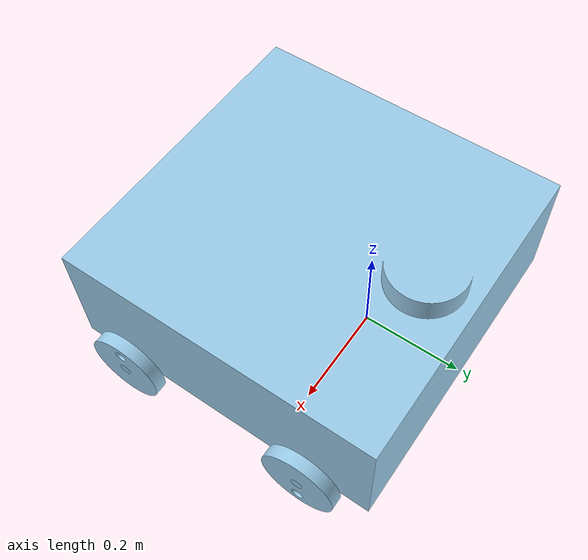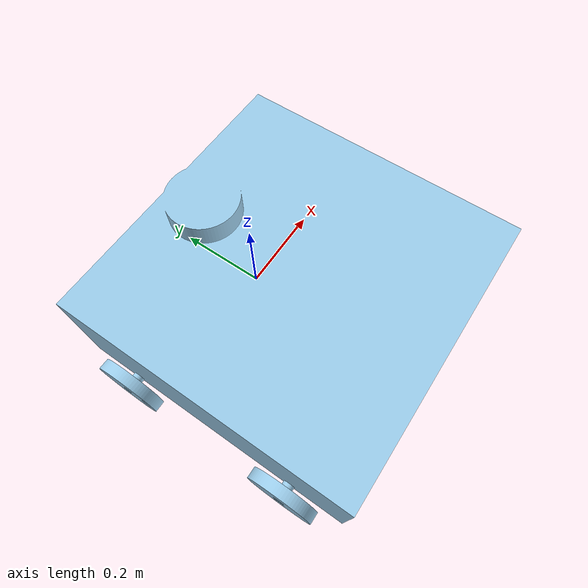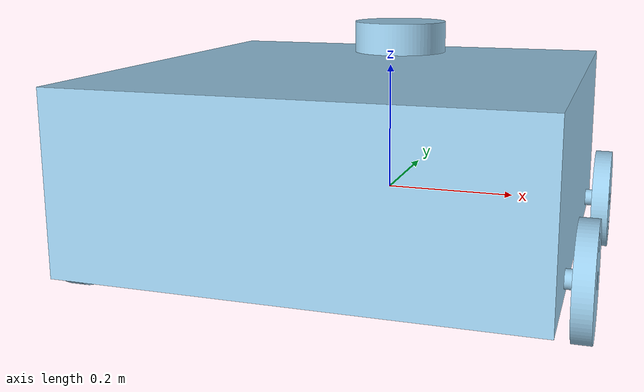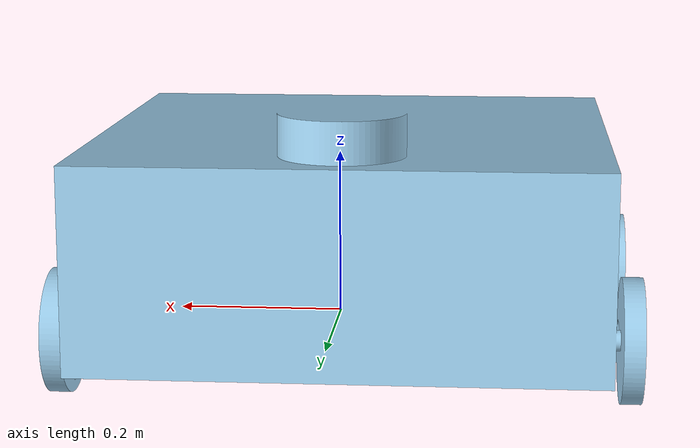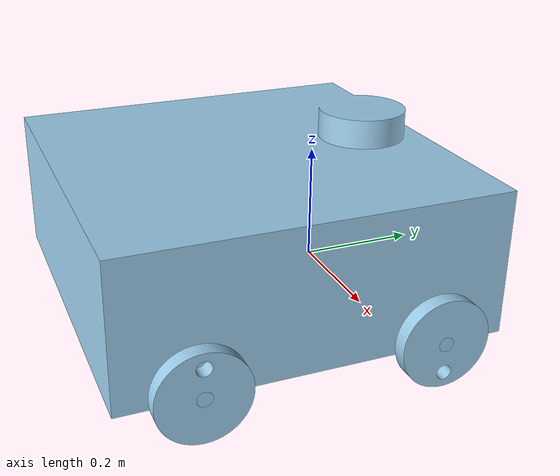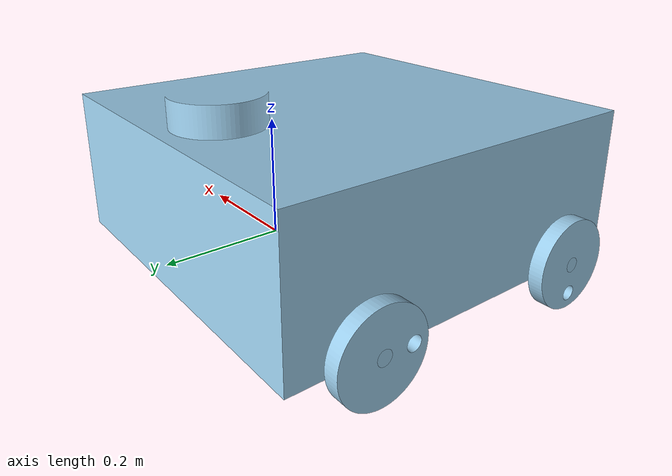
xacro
<?xml version="1.0"?>
<robot name="onshape" xmlns:xacro="http://ros.org/wiki/xacro">
<link name="base_link">
<visual>
<origin xyz="0.0185107 -0.0366209 -0.0384443" rpy="0 -0 0" />
<geometry>
<mesh filename="package://frc_ros_sim/my_robot/robot_body.stl"/>
</geometry>
<material name="robot_body_material">
<color rgba="0.615686 0.811765 0.929412 1.0"/>
</material>
</visual>
<collision>
<origin xyz="0.0185107 -0.0366209 -0.0384443" rpy="0 -0 0" />
<geometry>
<mesh filename="package://frc_ros_sim/my_robot/robot_body.stl"/>
</geometry>
<material name="robot_body_material">
<color rgba="0.615686 0.811765 0.929412 1.0"/>
</material>
</collision>
<inertial>
<origin xyz="-0.0108892 -0.120946 0.0878113" rpy="0 0 0"/>
<mass value="85.3592" />
<inertia ixx="11.6146" ixy="6.06475e-16"  ixz="3.1135e-16" iyy="11.1779" iyz="-0.0839813" izz="19.7311" />
</inertial>
</link>

<link name="wheel">
<visual>
<origin xyz="0 3.46945e-18 0" rpy="1.5708 -0 0" />
<geometry>
<mesh filename="package://frc_ros_sim/my_robot/wheel.stl"/>
</geometry>
<material name="wheel_material">
<color rgba="0.615686 0.811765 0.929412 1.0"/>
</material>
</visual>
<collision>
<origin xyz="0 3.46945e-18 0" rpy="1.5708 -0 0" />
<geometry>
<mesh filename="package://frc_ros_sim/my_robot/wheel.stl"/>
</geometry>
<material name="wheel_material">
<color rgba="0.615686 0.811765 0.929412 1.0"/>
</material>
</collision>
<inertial>
<origin xyz="2.3493e-19 0.00149412 -0.0127" rpy="0 0 0"/>
<mass value="1.19025" />
<inertia ixx="0.00179759" ixy="0"  ixz="0" iyy="0.00189058" iyz="0" izz="0.00356019" />
</inertial>
</link>

<joint name="wheelRightBack_speed" type="continuous">
<origin xyz="0.346811 -0.32092 -0.0130443" rpy="-1.5708 -0 -1.5708" />
<parent link="base_link" />
<child link="wheel" />
<axis xyz="0 0 1"/>
<limit effort="200" velocity="200" />
<joint_properties friction="0.0"/>
</joint>

<transmission name="wheelRightBack_speed_trans">
      <type>transmission_interface/SimpleTransmission</type>
      <actuator name="wheelRightBack_speed_motor">
        <mechanicalReduction>1</mechanicalReduction>
      </actuator>
      <joint name="wheelRightBack_speed">
        <hardwareInterface>VelocityJointInterface</hardwareInterface>
      </joint>
</transmission>

<link name="wheel_2">
<visual>
<origin xyz="0 0 -0.0254" rpy="-1.5708 -0 0" />
<geometry>
<mesh filename="package://frc_ros_sim/my_robot/wheel.stl"/>
</geometry>
<material name="wheel_material">
<color rgba="0.615686 0.811765 0.929412 1.0"/>
</material>
</visual>
<collision>
<origin xyz="0 0 -0.0254" rpy="-1.5708 -0 0" />
<geometry>
<mesh filename="package://frc_ros_sim/my_robot/wheel.stl"/>
</geometry>
<material name="wheel_material">
<color rgba="0.615686 0.811765 0.929412 1.0"/>
</material>
</collision>
<inertial>
<origin xyz="2.3493e-19 -0.00149412 -0.0127" rpy="0 0 0"/>
<mass value="1.19025" />
<inertia ixx="0.00179759" ixy="0"  ixz="0" iyy="0.00189058" iyz="0" izz="0.00356019" />
</inertial>
</link>

<joint name="wheelRightFront_speed" type="continuous">
<origin xyz="0.346811 0.0750801 -0.0130443" rpy="-1.5708 -0 -1.5708" />
<parent link="base_link" />
<child link="wheel_2" />
<axis xyz="0 0 1"/>
<limit effort="200" velocity="200" />
<joint_properties friction="0.0"/>
</joint>

<transmission name="wheelRightFront_speed_trans">
      <type>transmission_interface/SimpleTransmission</type>
      <actuator name="wheelRightFront_speed_motor">
        <mechanicalReduction>1</mechanicalReduction>
      </actuator>
      <joint name="wheelRightFront_speed">
        <hardwareInterface>VelocityJointInterface</hardwareInterface>
      </joint>
</transmission>

<link name="wheel_3">
<visual>
<origin xyz="0 0 0" rpy="-1.5708 -0 0" />
<geometry>
<mesh filename="package://frc_ros_sim/my_robot/wheel.stl"/>
</geometry>
<material name="wheel_material">
<color rgba="0.615686 0.811765 0.929412 1.0"/>
</material>
</visual>
<collision>
<origin xyz="0 0 0" rpy="-1.5708 -0 0" />
<geometry>
<mesh filename="package://frc_ros_sim/my_robot/wheel.stl"/>
</geometry>
<material name="wheel_material">
<color rgba="0.615686 0.811765 0.929412 1.0"/>
</material>
</collision>
<inertial>
<origin xyz="2.3493e-19 -0.00149412 0.0127" rpy="0 0 0"/>
<mass value="1.19025" />
<inertia ixx="0.00179759" ixy="0"  ixz="0" iyy="0.00189058" iyz="0" izz="0.00356019" />
</inertial>
</link>

<joint name="wheelLeftFront_speed" type="continuous">
<origin xyz="-0.368589 0.0750801 -0.0130443" rpy="-3.14159 -1.5708 0" />
<parent link="base_link" />
<child link="wheel_3" />
<axis xyz="0 0 1"/>
<limit effort="200" velocity="200" />
<joint_properties friction="0.0"/>
</joint>

<transmission name="wheelLeftFront_speed_trans">
      <type>transmission_interface/SimpleTransmission</type>
      <actuator name="wheelLeftFront_speed_motor">
        <mechanicalReduction>1</mechanicalReduction>
      </actuator>
      <joint name="wheelLeftFront_speed">
        <hardwareInterface>VelocityJointInterface</hardwareInterface>
      </joint>
</transmission>

<link name="wheel_4">
<visual>
<origin xyz="0 -3.46945e-18 0" rpy="-1.5708 -0 0" />
<geometry>
<mesh filename="package://frc_ros_sim/my_robot/wheel.stl"/>
</geometry>
<material name="wheel_material">
<color rgba="0.615686 0.811765 0.929412 1.0"/>
</material>
</visual>
<collision>
<origin xyz="0 -3.46945e-18 0" rpy="-1.5708 -0 0" />
<geometry>
<mesh filename="package://frc_ros_sim/my_robot/wheel.stl"/>
</geometry>
<material name="wheel_material">
<color rgba="0.615686 0.811765 0.929412 1.0"/>
</material>
</collision>
<inertial>
<origin xyz="2.3493e-19 -0.00149412 0.0127" rpy="0 0 0"/>
<mass value="1.19025" />
<inertia ixx="0.00179759" ixy="0"  ixz="0" iyy="0.00189058" iyz="0" izz="0.00356019" />
</inertial>
</link>

<joint name="wheelLeftBack_speed" type="continuous">
<origin xyz="-0.368589 -0.32092 -0.0130443" rpy="-1.5708 -0 -1.5708" />
<parent link="base_link" />
<child link="wheel_4" />
<axis xyz="0 0 1"/>
<limit effort="200" velocity="200" />
<joint_properties friction="0.0"/>
</joint>

<transmission name="wheelLeftBack_speed_trans">
      <type>transmission_interface/SimpleTransmission</type>
      <actuator name="wheelLeftBack_speed_motor">
        <mechanicalReduction>1</mechanicalReduction>
      </actuator>
      <joint name="wheelLeftBack_speed">
        <hardwareInterface>VelocityJointInterface</hardwareInterface>
      </joint>
</transmission>

<gazebo>
    <plugin name="gazebo_ros_control" filename="libgazebo_ros_control.so">
      <robotNamespace>/</robotNamespace>
    </plugin>
  </gazebo>

</robot>
